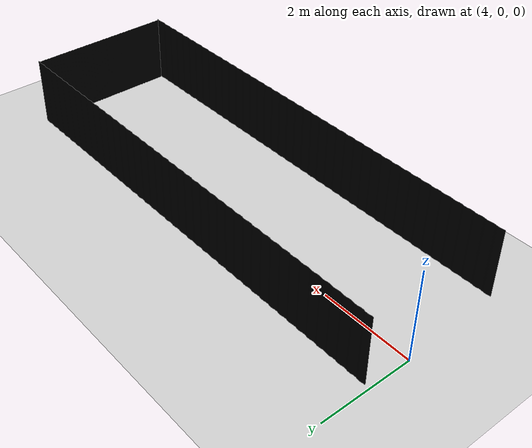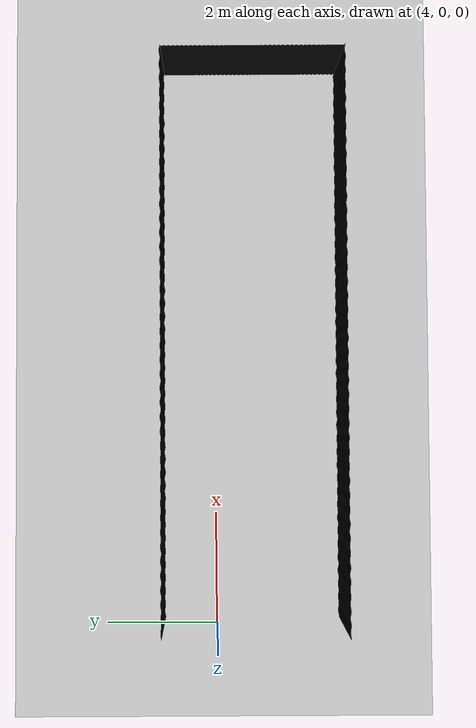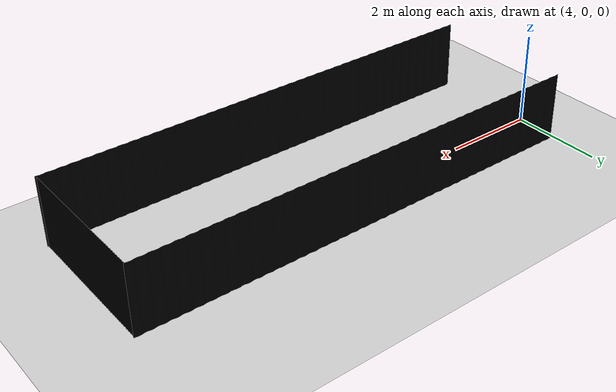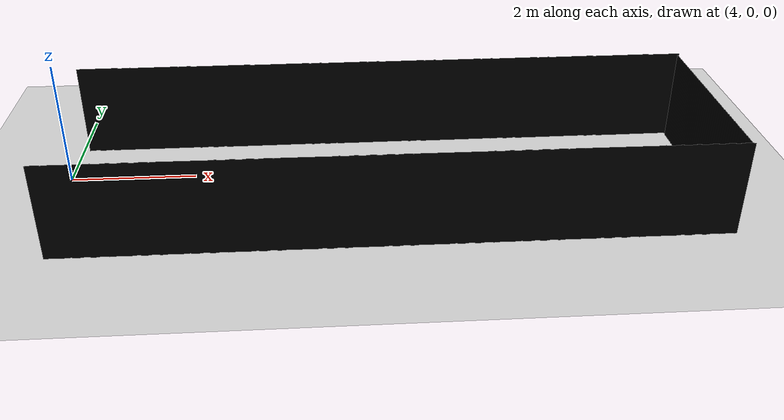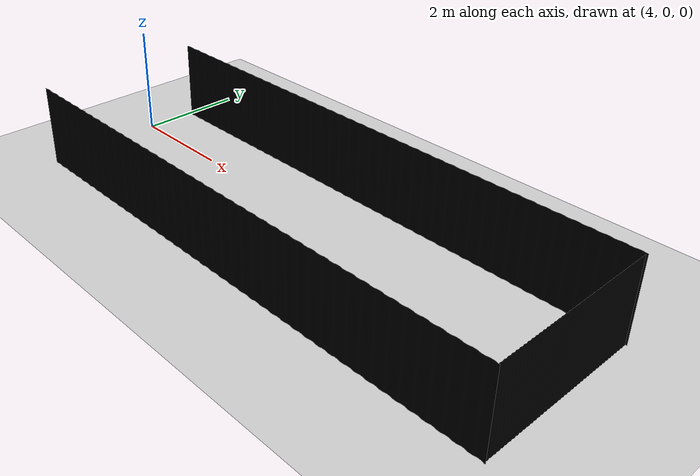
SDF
<sdf version='1.9'>
  <world name='empty'>
    <physics name='1ms' type='ignored'>
      <max_step_size>0.001</max_step_size>
      <real_time_factor>1</real_time_factor>
      <real_time_update_rate>1000</real_time_update_rate>
    </physics>
    <plugin name='gz::sim::systems::Physics' filename='ignition-gazebo-physics-system'/>
    <plugin name='gz::sim::systems::UserCommands' filename='ignition-gazebo-user-commands-system'/>
    <plugin name='gz::sim::systems::SceneBroadcaster' filename='ignition-gazebo-scene-broadcaster-system'/>
    <plugin name='gz::sim::systems::Contact' filename='ignition-gazebo-contact-system'/>
    <plugin name='gz::sim::systems::Sensors' filename='ignition-gazebo-sensors-system'/>
    <gravity>0 0 -9.8</gravity>
    <magnetic_field>6e-06 2.3e-05 -4.2e-05</magnetic_field>
    <atmosphere type='adiabatic'/>
    <scene>
      <ambient>0.4 0.4 0.4 1</ambient>
      <background>0.7 0.7 0.7 1</background>
      <shadows>true</shadows>
    </scene>
    <include>
        <uri>
            https://fuel.gazebosim.org/1.0/OpenRobotics/models/Ground Plane
        </uri>
    </include>
    <include>
        <uri>
            https://fuel.gazebosim.org/1.0/OpenRobotics/models/Sun
        </uri>
    </include>
    <include>
      <static>true</static>
      <uri>/home/user/ros2_ws/src/itls_robot_description/models/container_wall</uri>
      <pose>12.31 0.66 0 0 0 3.14159</pose>
    </include>
  </world>
</sdf>

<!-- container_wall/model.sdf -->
<sdf version="1.7">
  <model name="container_wall">
    <link name="link">
      <visual name="visual">
        <geometry>
          <mesh>
            <uri>/home/user/ros2_ws/src/itls_robot_description/models/container_wall/meshes/container_wall.dae</uri>
          </mesh>
        </geometry>
      </visual>
      <collision name="collision">
        <geometry>
          <mesh>
            <uri>/home/user/ros2_ws/src/itls_robot_description/models/container_wall/meshes/container_wall.dae</uri>
          </mesh>
        </geometry>
      </collision>
    </link>
  </model>
</sdf>
